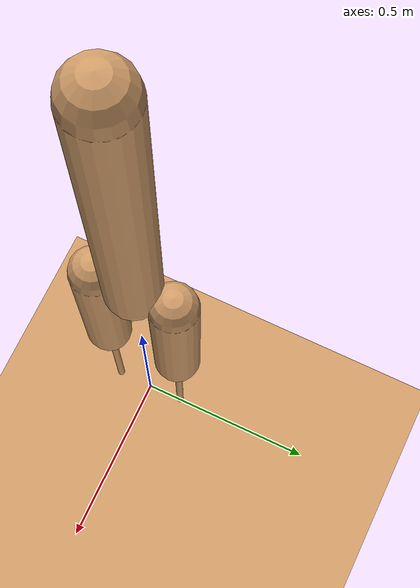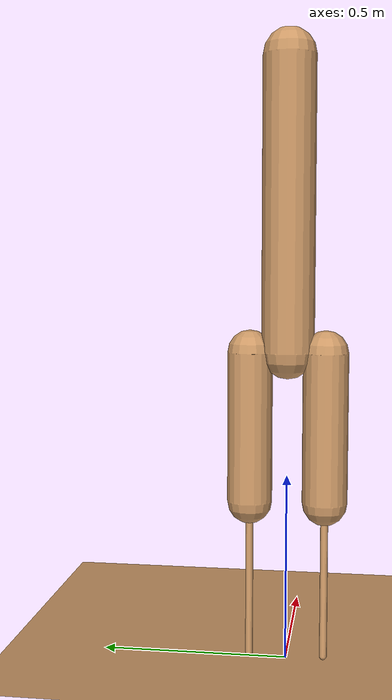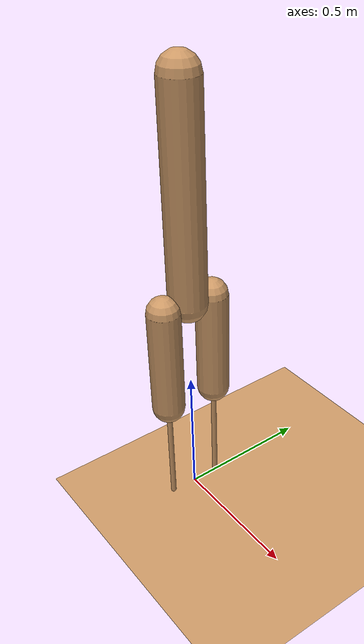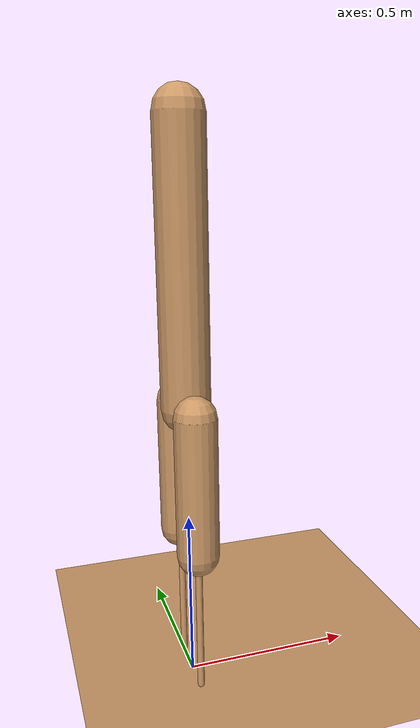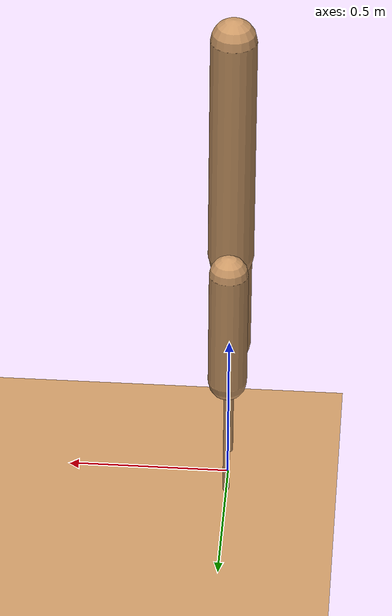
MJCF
<mujoco model='5linkwalkerv3'>
    <compiler inertiafromgeom='false' angle='degree'/>

    <default>
        <joint limited='true' damping='0' armature='0' stiffness='0' />
        <geom contype='1' conaffinity='1' condim='1' rgba='0.8 0.6 .4 1' friction='0.5 0.5 0.5'
        	margin="0.001" solref=".02 1" solimp=".8 .8 .01" material="geom"/>

    <default class="mot">
        <motor ctrlrange='-1 1' ctrllimited='true' gear='100'/>
    </default>

    <default class="prop">
        <position kp='3000' gear='1' ctrllimited='false'/>
    </default>

    <default class="deriv">
        <velocity kv='20' gear='1' ctrllimited="false"/>
    </default>
  </default>

    <option timestep='0.002' iterations="50" tolerance="1e-10" solver="Newton" jacobian="dense" cone="elliptic" integrator="RK4"/>

    <size nstack="1000000"/>

    <visual>
        <map fogstart="3" fogend="5" force="0.1" znear="0.5"/>
        <quality shadowsize="2048" offsamples="8"/>
        <global offwidth="800" offheight="800"/>
    </visual>

    <asset>
        <texture type="skybox" builtin="gradient" width="128" height="128" rgb1=".4 .6 .8"
            rgb2="0 0 0"/>
        <texture name="texgeom" type="cube" builtin="flat" mark="cross" width="127" height="1278"
            rgb1="0.8 0.6 0.4" rgb2="0.8 0.6 0.4" markrgb="1 1 1" random="0.01"/>
        <texture name="texplane" type="2d" builtin="checker" rgb1=".2 .3 .4" rgb2=".1 0.15 0.2"
            width="512" height="512"/>

        <material name='MatPlane' reflectance='0.3' texture="texplane" texrepeat="1 1" texuniform="true"/>
        <material name='geom' texture="texgeom" texuniform="true"/>
    </asset>

    <worldbody>
        <geom name='floor' pos='0 0 0' size='30 30 .125' type='plane' material="MatPlane" condim='3'/>

        <light mode='targetbodycom' target='torso' directional='false' diffuse='.8 .8 .8' specular='0.3 0.3 0.3' pos='0 0 4.0' dir='0 0 -1'/>

		    <camera name='targeting' pos='1 1 2' mode='targetbodycom' target='torso'/>
        <body name='torso' pos='0 0 1.6'>
            <inertial pos='0 0 -0.385' mass='50' diaginertia='2.5954 2.5954 0.25'/>

			      <camera name='tracking' pos='0 -5 0' zaxis="0 -1 0" mode='trackcom'/>

            <joint name ='free_x' type='slide' pos='0 0 0' axis='1 0 0' range='-100 100'/>
            <joint name ='free_z' type='slide' pos='0 0 0' axis='0 0 1' range='-100 100'/>
            <joint name ='torso_global' type='hinge' pos='0 0 0' axis='0 1 0' range='-90 90'/>
            <geom name='torso1' type='capsule' fromto='0 0 0 0 0 -0.77'  size='0.07'/>
              <body name='right_thigh' pos='0 -0.1 -0.77' >
                  <inertial pos='0 0 -0.2' mass='7' diaginertia='0.0977 0.0977 0.00875'/>
                  <joint name='right_hip_y' type='hinge' pos='0 0 0' axis='0 1 0' range='-120 120'  />
                  <geom name='right_thigh1' type='capsule' fromto='0 0.0 0 0 0.0 -0.4'  size='0.06' />
                  <body name='right_shin' pos='0 0.0 -0.4' >
                      <inertial pos='0 0 -0.215' mass='3' diaginertia='0.0481 0.0481 0.00375'/>
                      <joint name='right_knee' type='hinge' pos='0 0.0 0.04' axis='0 1 0' range='2 160' />
                      <geom name='right_shin1' type='capsule' fromto='0 0.0 0.0 0 0 -0.42'   size='0.01' />

                  </body>
              </body>
              <body name='left_thigh' pos='0 0.1 -0.77' >
                  <inertial pos='0 0 -0.2' mass='7' diaginertia='0.0977 0.0977 0.00875' />
                  <joint name='left_hip_y' type='hinge' pos='0 0 0' axis='0 1 0' range='-120 120' />
                  <geom name='left_thigh1' type='capsule' fromto='0 0.0 0 0 0.0 -0.4'  size='0.06' />
                  <body name='left_shin' pos='0 0.0 -0.4' >
                      <inertial pos='0 0 -0.215' mass='3' diaginertia='0.0481 0.0481 0.00375' />
                      <joint name='left_knee' type='hinge' pos='0 0.0 0.04' axis='0 1 0' range='2 160' />
                      <geom name='left_shin1' type='capsule' fromto='0 0.0 0.0 0 0 -0.42'   size='0.01' />

                  </body>

              </body>

        </body>
    </worldbody>

    <actuator>

        <motor name='right_hip_y' class='mot'     joint='right_hip_y' />

        <motor name='right_knee' class="mot"      joint='right_knee' />

        <motor name='left_hip_y' class="mot"      joint='left_hip_y' />

        <motor name='left_knee' class="mot"       joint='left_knee' />

-->
    </actuator>

</mujoco>
